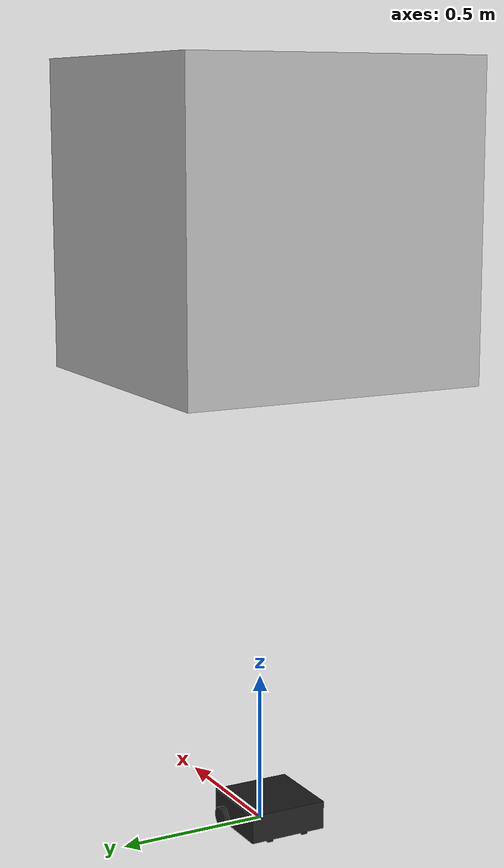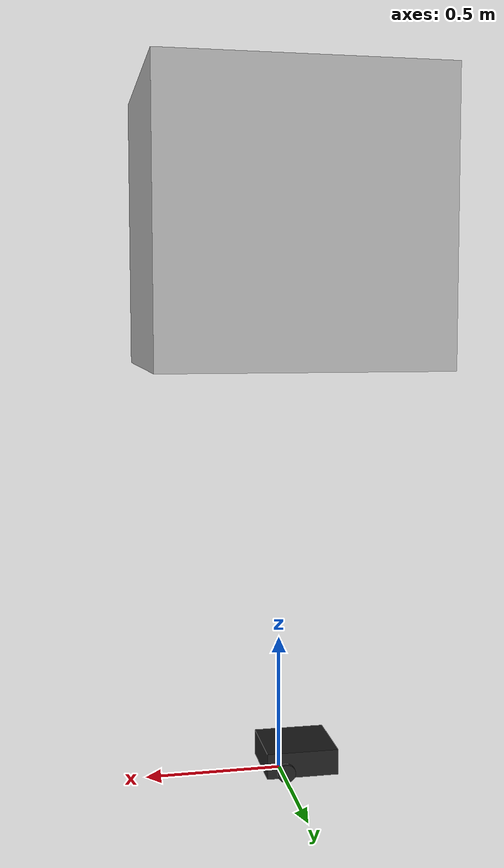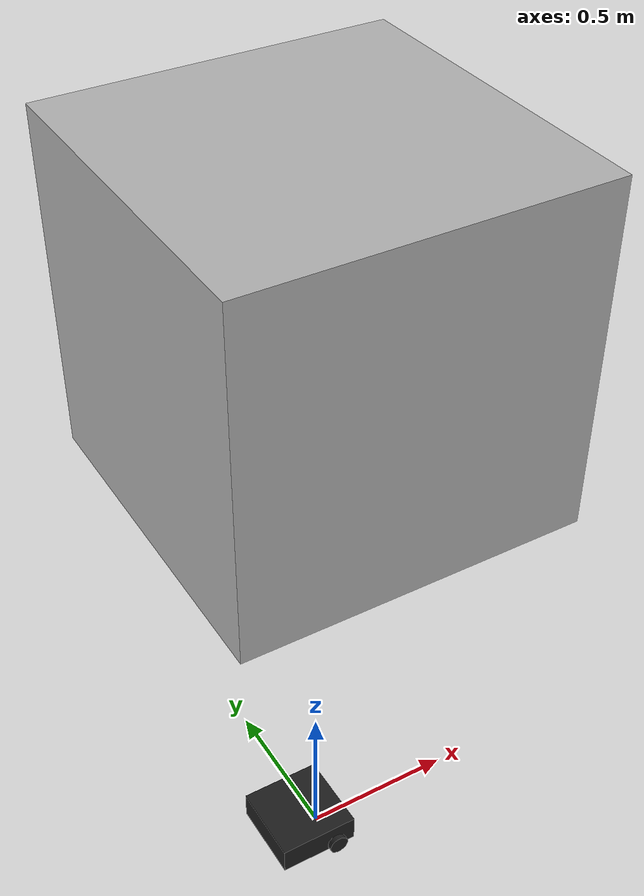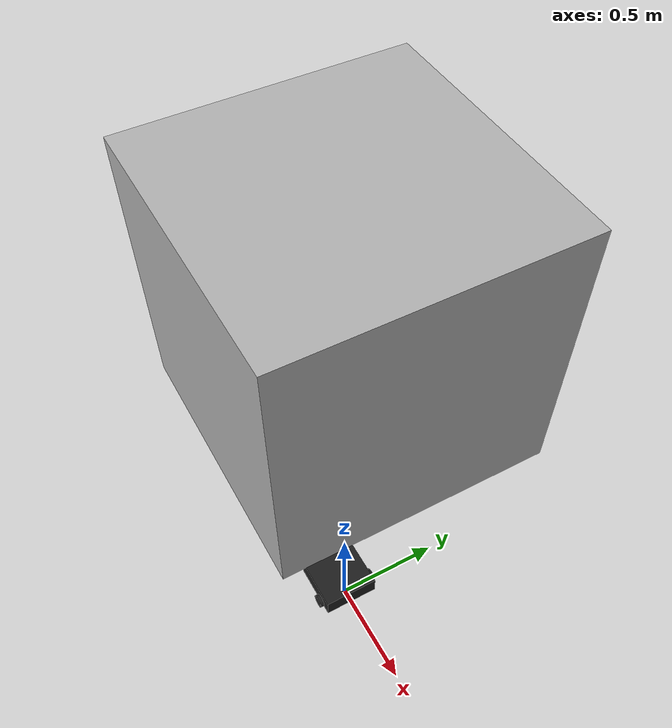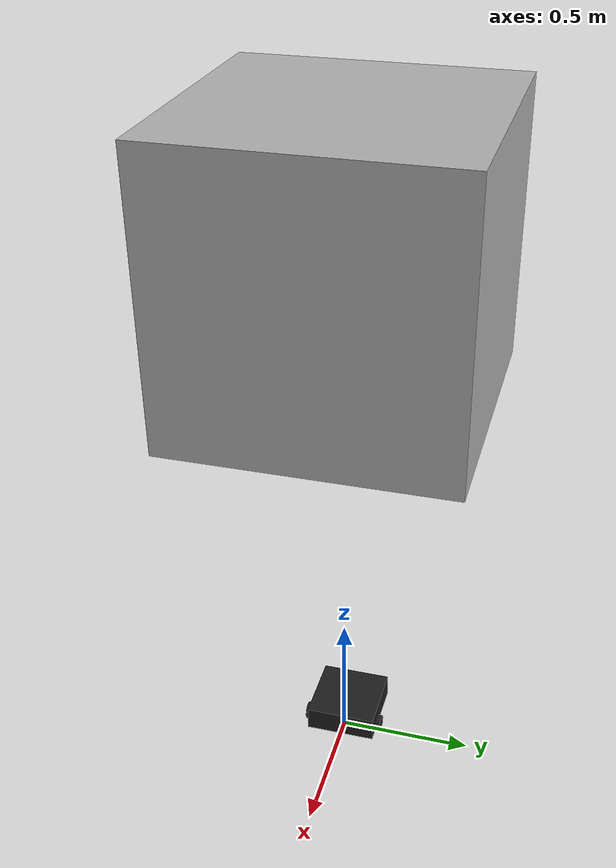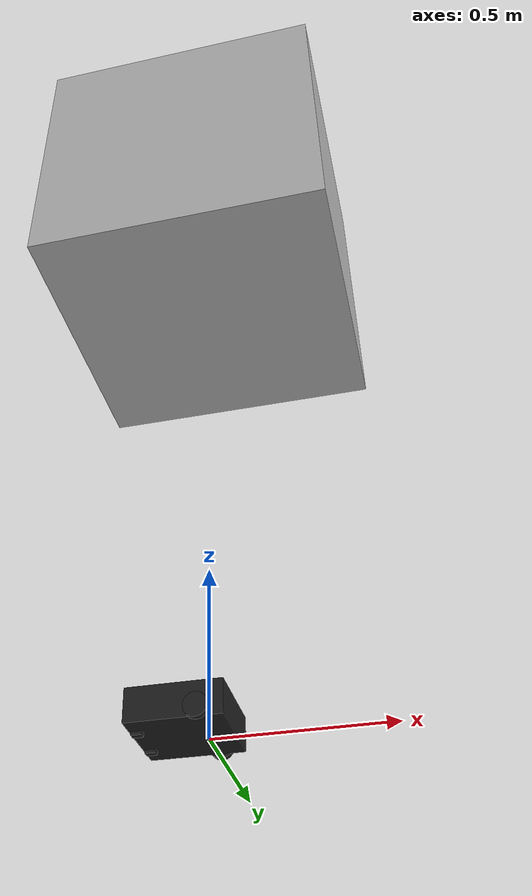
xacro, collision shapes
<?xml version="1.0" ?>
<robot name="turtlebot3_waffle_pi" xmlns:xacro="http://ros.org/wiki/xacro">
  <xacro:include filename="$(find turtlebot3_description)/urdf/common_properties.xacro"/>
  <xacro:include filename="$(find turtlebot3_description)/urdf/turtlebot3_waffle_pi.gazebo.xacro"/>

  <link name="base_footprint"/>

  <joint name="base_joint" type="fixed">
    <parent link="base_footprint"/>
    <child link="base_link" />
    <origin xyz="0 0 0.010" rpy="0 0 0"/>
  </joint>

  <link name="base_link">
    <visual>
      <origin xyz="-0.064 0 0.0" rpy="0 0 0"/>
      <geometry>
        <mesh filename="package://turtlebot3_description/meshes/bases/waffle_pi_base.stl" scale="0.001 0.001 0.001"/>
      </geometry>
      <material name="light_black"/>
    </visual>

    <collision>
      <origin xyz="-0.064 0 0.047" rpy="0 0 0"/>
      <geometry>
        <box size="0.266 0.266 0.094"/>
      </geometry>
    </collision>

    <inertial>
      <origin xyz="0 0 0" rpy="0 0 0"/>
      <mass value="1.3729096e+00"/>
      <inertia ixx="8.7002718e-03" ixy="-4.7576583e-05" ixz="1.1160499e-04"
               iyy="8.6195418e-03" iyz="-3.5422299e-06"
               izz="1.4612727e-02" />
    </inertial>
  </link>

  <joint name="wheel_left_joint" type="continuous">
    <parent link="base_link"/>
    <child link="wheel_left_link"/>
    <origin xyz="0.0 0.144 0.023" rpy="-1.57 0 0"/>
    <axis xyz="0 0 1"/>
  </joint>

  <link name="wheel_left_link">
    <visual>
      <origin xyz="0 0 0" rpy="1.57 0 0"/>
      <geometry>
        <mesh filename="package://turtlebot3_description/meshes/wheels/left_tire.stl" scale="0.001 0.001 0.001"/>
      </geometry>
      <material name="dark"/>
    </visual>

    <collision>
      <origin xyz="0 0 0" rpy="0 0 0"/>
      <geometry>
        <cylinder length="0.018" radius="0.033"/>
      </geometry>
    </collision>

    <inertial>
      <origin xyz="0 0 0" />
      <mass value="2.8498940e-02" />
      <inertia ixx="1.1175580e-05" ixy="-4.2369783e-11" ixz="-5.9381719e-09"
               iyy="1.1192413e-05" iyz="-1.4400107e-11"
               izz="2.0712558e-05" />
      </inertial>
  </link>

  <joint name="wheel_right_joint" type="continuous">
    <parent link="base_link"/>
    <child link="wheel_right_link"/>
    <origin xyz="0.0 -0.144 0.023" rpy="-1.57 0 0"/>
    <axis xyz="0 0 1"/>
  </joint>

  <link name="wheel_right_link">
    <visual>
      <origin xyz="0 0 0" rpy="1.57 0 0"/>
      <geometry>
        <mesh filename="package://turtlebot3_description/meshes/wheels/right_tire.stl" scale="0.001 0.001 0.001"/>
      </geometry>
      <material name="dark"/>
    </visual>

    <collision>
      <origin xyz="0 0 0" rpy="0 0 0"/>
      <geometry>
        <cylinder length="0.018" radius="0.033"/>
      </geometry>
    </collision>

    <inertial>
      <origin xyz="0 0 0" />
      <mass value="2.8498940e-02" />
      <inertia ixx="1.1175580e-05" ixy="-4.2369783e-11" ixz="-5.9381719e-09"
               iyy="1.1192413e-05" iyz="-1.4400107e-11"
               izz="2.0712558e-05" />
      </inertial>
  </link>

  <joint name="caster_back_right_joint" type="fixed">
    <parent link="base_link"/>
    <child link="caster_back_right_link"/>
    <origin xyz="-0.177 -0.064 -0.004" rpy="-1.57 0 0"/>
  </joint>

  <link name="caster_back_right_link">
    <collision>
      <origin xyz="0 0.001 0" rpy="0 0 0"/>
      <geometry>
        <box size="0.030 0.009 0.020"/>
      </geometry>
    </collision>

    <inertial>
      <origin xyz="0 0 0" />
      <mass value="0.005" />
      <inertia ixx="0.001" ixy="0.0" ixz="0.0"
               iyy="0.001" iyz="0.0"
               izz="0.001" />
    </inertial>
  </link>

  <joint name="caster_back_left_joint" type="fixed">
    <parent link="base_link"/>
    <child link="caster_back_left_link"/>
    <origin xyz="-0.177 0.064 -0.004" rpy="-1.57 0 0"/>
  </joint>

  <link name="caster_back_left_link">
    <collision>
      <origin xyz="0 0.001 0" rpy="0 0 0"/>
      <geometry>
        <box size="0.030 0.009 0.020"/>
      </geometry>
    </collision>

    <inertial>
      <origin xyz="0 0 0" />
      <mass value="0.005" />
      <inertia ixx="0.001" ixy="0.0" ixz="0.0"
               iyy="0.001" iyz="0.0"
               izz="0.001" />
    </inertial>
  </link>

  <link name="camera_link">
    <pose>0 0 0 -0 -0 -3.12703</pose>
    <visual>
      <origin xyz="0.0 0.0 0.0" rpy="0 0 0"/>
      <geometry>
        <box size="0.10 0.10 0.10"/>
      </geometry>
    </visual>
    <collision>
      <origin xyz="0.0 0.0 0.0" rpy="0 0 0"/>
      <geometry>
        <box size="0.1 0.1 0.1"/>
      </geometry>
    </collision>
  </link>
  <link name="drone_link">
    <pose> 0 0 20 0 0 0</pose>
    <collision>
      <origin xyz="0.0 0.0 0.0" rpy="0.0 0.0 0.0"/>
      <geometry>
        <box size="1.0 1.0 1.0"/>
      </geometry>
    </collision>
  </link>
  <joint name="drone_joint" type="fixed">
    <origin xyz="0.0 0.0 2.0" rpy="0.0 0.0 0.0"/>
    <parent link="base_link"/>
    <child link="drone_link"/>
  </joint>
  <joint name="camera_joint" type="fixed">
    <origin xyz="0.0 0.0 0.0" rpy="0 1.5707 0"/>
    <parent link="drone_link"/>
    <child link="camera_link"/>
  </joint>

  <link name="gps"/>
  <joint name="gps_joint" type="fixed">
    <origin xyz="0.0 0.0 0.1" rpy="0.0 0.0 0.0"/>
    <parent link="drone_link"/>
    <child link="gps"/>
  </joint>

  <link name="imu_link"/>
  <joint name="imu_joint" type="fixed">
    <parent link="drone_link"/>
    <child link="imu_link"/>
    <origin xyz="0.0 0 0.068" rpy="0 0 0"/>
  </joint>

</robot>
